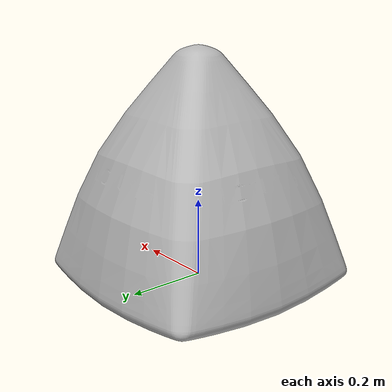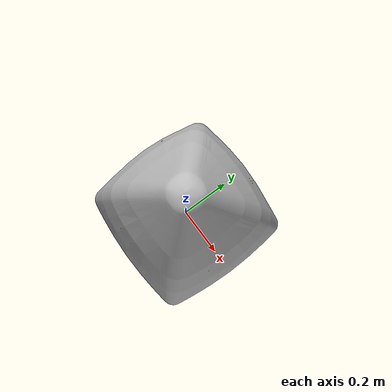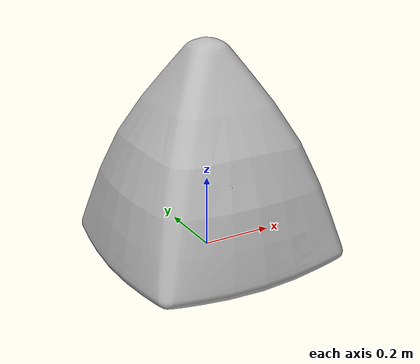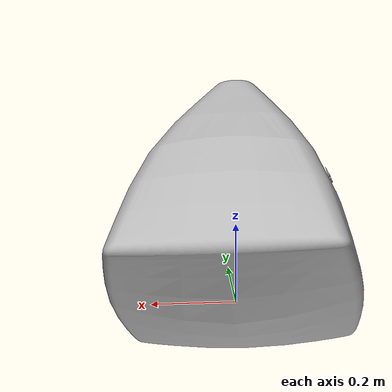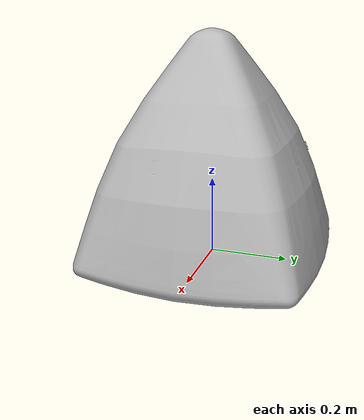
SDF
<?xml version="1.0"?>
<sdf version="1.10">
  <model name="regatta_buoy">
    <static>true</static>
    <link name="buoy">
      <visual name="buoy">
        <geometry><mesh><uri>model://regatta_buoy/meshes/regatta_buoy.obj</uri></mesh></geometry>
      </visual>
    </link>
  </model>
</sdf>
